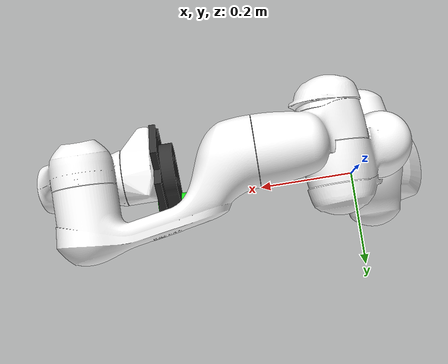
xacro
<?xml version="1.0" encoding="utf-8"?>
<robot xmlns:xacro="http://www.ros.org/wiki/xacro" name="panda">

  <xacro:include filename="panda_arm.urdf"/>

  <xacro:include filename="$(find reorientbot_ros)/robots/drl/suction.xacro"/>
  <xacro:suction_gripper ns="panda" rpy="${pi} 0 ${-pi/4}" xyz="0 0 0.0065" connected_to="panda_link8"/>

</robot>

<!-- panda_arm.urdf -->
<!-- |    This document was autogenerated by xacro from panda_arm_hand.urdf.xacro      | -->
<!-- |    EDITING THIS FILE BY HAND IS NOT RECOMMENDED                                 | -->
<robot name="panda" xmlns:xacro="http://www.ros.org/wiki/xacro">
  <link name="panda_link0">
    <inertial>
      <origin rpy="0 0 0" xyz="0 0 0.05"/>
      <mass value="2.9"/>
      <inertia ixx="0.1" ixy="0" ixz="0" iyy="0.1" iyz="0" izz="0.1"/>
    </inertial>
    <visual>
      <geometry>
        <mesh filename="package://meshes/collision/link0.obj"/>
      </geometry>
      <material name="panda_white">
        <color rgba="1. 1. 1. 1."/>
      </material>
    </visual>
    <collision>
      <geometry>
        <mesh filename="package://meshes/collision/link0.obj"/>
      </geometry>
      <material name="panda_white"/>
    </collision>
  </link>
  <link name="panda_link1">
    <inertial>
      <origin rpy="0 0 0" xyz="0 -0.04 -0.05"/>
      <mass value="2.7"/>
      <inertia ixx="0.1" ixy="0" ixz="0" iyy="0.1" iyz="0" izz="0.1"/>
    </inertial>
    <visual>
      <geometry>
        <mesh filename="package://meshes/visual/link1.obj"/>
      </geometry>
      <material name="panda_white"/>
    </visual>
    <collision>
      <geometry>
        <mesh filename="package://meshes/collision/link1.obj"/>
      </geometry>
      <material name="panda_white"/>
    </collision>
  </link>
  <joint name="panda_joint1" type="revolute">
    <safety_controller k_position="100.0" k_velocity="40.0" soft_lower_limit="-2.8973" soft_upper_limit="2.8973"/>
    <origin rpy="0 0 0" xyz="0 0 0.333"/>
    <parent link="panda_link0"/>
    <child link="panda_link1"/>
    <axis xyz="0 0 1"/>
    <limit effort="87" lower="-2.8973" upper="2.8973" velocity="2.1750"/>
  </joint>
  <link name="panda_link2">
    <inertial>
      <origin rpy="0 0 0" xyz="0 -0.04 0.06"/>
      <mass value="2.73"/>
      <inertia ixx="0.1" ixy="0" ixz="0" iyy="0.1" iyz="0" izz="0.1"/>
    </inertial>
    <visual>
      <geometry>
        <mesh filename="package://meshes/visual/link2.obj"/>
      </geometry>
      <material name="panda_white"/>
    </visual>
    <collision>
      <geometry>
        <mesh filename="package://meshes/collision/link2.obj"/>
      </geometry>
      <material name="panda_white"/>
    </collision>
  </link>
  <joint name="panda_joint2" type="revolute">
    <safety_controller k_position="100.0" k_velocity="40.0" soft_lower_limit="-1.7628" soft_upper_limit="1.7628"/>
    <origin rpy="-1.57079632679 0 0" xyz="0 0 0"/>
    <parent link="panda_link1"/>
    <child link="panda_link2"/>
    <axis xyz="0 0 1"/>
    <limit effort="87" lower="-1.7628" upper="1.7628" velocity="2.1750"/>
  </joint>
  <link name="panda_link3">
    <inertial>
      <origin rpy="0 0 0" xyz="0.01 0.01 -0.05"/>
      <mass value="2.04"/>
      <inertia ixx="0.1" ixy="0" ixz="0" iyy="0.1" iyz="0" izz="0.1"/>
    </inertial>
    <visual>
      <geometry>
        <mesh filename="package://meshes/visual/link3.obj"/>
      </geometry>
      <material name="panda_red">
        <color rgba="1. 1. 1. 1."/>
      </material>
    </visual>
    <collision>
      <geometry>
        <mesh filename="package://meshes/collision/link3.obj"/>
      </geometry>
    </collision>
  </link>
  <joint name="panda_joint3" type="revolute">
    <safety_controller k_position="100.0" k_velocity="40.0" soft_lower_limit="-2.8973" soft_upper_limit="2.8973"/>
    <origin rpy="1.57079632679 0 0" xyz="0 -0.316 0"/>
    <parent link="panda_link2"/>
    <child link="panda_link3"/>
    <axis xyz="0 0 1"/>
    <limit effort="87" lower="-2.8973" upper="2.8973" velocity="2.1750"/>
  </joint>
  <link name="panda_link4">
    <inertial>
      <origin rpy="0 0 0" xyz="-0.03 0.03 0.02"/>
      <mass value="2.08"/>
      <inertia ixx="0.1" ixy="0" ixz="0" iyy="0.1" iyz="0" izz="0.1"/>
    </inertial>
    <visual>
      <geometry>
        <mesh filename="package://meshes/visual/link4.obj"/>
      </geometry>
      <material name="panda_white"/>
    </visual>
    <collision>
      <geometry>
        <mesh filename="package://meshes/collision/link4.obj"/>
      </geometry>
      <material name="panda_white"/>
    </collision>
  </link>
  <joint name="panda_joint4" type="revolute">
    <safety_controller k_position="100.0" k_velocity="40.0" soft_lower_limit="-3.0718" soft_upper_limit="-0.0698"/>
    <origin rpy="1.57079632679 0 0" xyz="0.0825 0 0"/>
    <parent link="panda_link3"/>
    <child link="panda_link4"/>
    <axis xyz="0 0 1"/>
    <limit effort="87" lower="-3.0718" upper="-0.0698" velocity="2.1750"/>
  </joint>
  <link name="panda_link5">
    <inertial>
      <origin rpy="0 0 0" xyz="0 0.04 -0.12"/>
      <mass value="3"/>
      <inertia ixx="0.1" ixy="0" ixz="0" iyy="0.1" iyz="0" izz="0.1"/>
    </inertial>
    <visual>
      <geometry>
        <mesh filename="package://meshes/visual/link5.obj"/>
      </geometry>
      <material name="panda_white"/>
    </visual>
    <collision>
      <geometry>
        <mesh filename="package://meshes/collision/link5.obj"/>
      </geometry>
      <material name="panda_white"/>
    </collision>
  </link>
  <joint name="panda_joint5" type="revolute">
    <safety_controller k_position="100.0" k_velocity="40.0" soft_lower_limit="-2.8973" soft_upper_limit="2.8973"/>
    <origin rpy="-1.57079632679 0 0" xyz="-0.0825 0.384 0"/>
    <parent link="panda_link4"/>
    <child link="panda_link5"/>
    <axis xyz="0 0 1"/>
    <limit effort="12" lower="-2.8973" upper="2.8973" velocity="2.6100"/>
  </joint>
  <link name="panda_link6">
    <inertial>
      <origin rpy="0 0 0" xyz="0.04 0 0"/>
      <mass value="1.3"/>
      <inertia ixx="0.1" ixy="0" ixz="0" iyy="0.1" iyz="0" izz="0.1"/>
    </inertial>
    <visual>
      <geometry>
        <mesh filename="package://meshes/visual/link6.obj"/>
      </geometry>
      <material name="panda_white"/>
    </visual>
    <collision>
      <geometry>
        <mesh filename="package://meshes/collision/link6.obj"/>
      </geometry>
      <material name="panda_white"/>
    </collision>
  </link>
  <joint name="panda_joint6" type="revolute">
    <safety_controller k_position="100.0" k_velocity="40.0" soft_lower_limit="-0.0175" soft_upper_limit="3.7525"/>
    <origin rpy="1.57079632679 0 0" xyz="0 0 0"/>
    <parent link="panda_link5"/>
    <child link="panda_link6"/>
    <axis xyz="0 0 1"/>
    <limit effort="12" lower="-0.0175" upper="3.7525" velocity="2.6100"/>
  </joint>
  <link name="panda_link7">
    <inertial>
      <origin rpy="0 0 0" xyz="0 0 0.08"/>
      <mass value=".2"/>
      <inertia ixx="0.1" ixy="0" ixz="0" iyy="0.1" iyz="0" izz="0.1"/>
    </inertial>
    <visual>
      <geometry>
        <mesh filename="package://meshes/collision/link7.obj"/>
      </geometry>
      <material name="panda_white"/>
    </visual>
    <collision>
      <geometry>
        <mesh filename="package://meshes/collision/link7.obj"/>
      </geometry>
      <material name="panda_white"/>
    </collision>
  </link>
  <joint name="panda_joint7" type="revolute">
    <safety_controller k_position="100.0" k_velocity="40.0" soft_lower_limit="-2.8973" soft_upper_limit="2.8973"/>
    <origin rpy="1.57079632679 0 0" xyz="0.088 0 0"/>
    <parent link="panda_link6"/>
    <child link="panda_link7"/>
    <axis xyz="0 0 1"/>
    <limit effort="12" lower="-2.8973" upper="2.8973" velocity="2.6100"/>
  </joint>
  <link name="panda_link8">
    <inertial>
      <origin rpy="0 0 0" xyz="0 0 0"/>
      <mass value="0.0"/>
      <inertia ixx="0.1" ixy="0" ixz="0" iyy="0.1" iyz="0" izz="0.1"/>
    </inertial>
  </link>
  <joint name="panda_joint8" type="fixed">
    <origin rpy="0 0 0" xyz="0 0 0.107"/>
    <parent link="panda_link7"/>
    <child link="panda_link8"/>
    <axis xyz="0 0 0"/>
  </joint>

</robot>

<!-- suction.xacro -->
<robot xmlns:xacro="http://www.ros.org/wiki/xacro" name="suction_gripper">

  <material name="black">
    <color rgba="0.2 0.2 0.2 1"/>
  </material>

  <material name="green">
    <color rgba="0.1 0.9 0.1 1"/>
  </material>

  <xacro:macro name="suction_gripper" params="connected_to:='' ns:='' rpy:='0 0 0' xyz:='0 0 0' ">

    <xacro:unless value="${connected_to == ''}">
      <joint name="${ns}_suction_gripper_joint" type="fixed">
        <parent link="${connected_to}"/>
        <child link="${ns}_suction_gripper"/>
        <origin xyz="${xyz}" rpy="${rpy}"/>
      </joint>
    </xacro:unless>

    <link name="${ns}_suction_gripper">
      <visual>
        <geometry>
          <mesh filename="package://reorientbot_ros/robots/drl/meshes/visual/suction_mount.obj"/>
        </geometry>
        <material name="black"/>
      </visual>
      <collision>
        <geometry>
          <mesh filename="package://reorientbot_ros/robots/drl/meshes/collision/suction_mount.obj"/>
        </geometry>
      </collision>
    </link>

    <link name="tipLink">
      <visual>
        <geometry>
          <cylinder length="0.10" radius="0.018"/>
        </geometry>
        <origin xyz="0 0 -0.05"/>
        <material name="green"/>
      </visual>
      <collision>
        <geometry>
          <cylinder length="0.16" radius="0.018"/>
        </geometry>
        <origin xyz="0 0 -0.08"/>
      </collision>
    </link>

    <joint name="${ns}_suction_mount_to_cup_joint" type="fixed">
      <parent link="${ns}_suction_gripper"/>
      <child link="tipLink"/>
      <origin xyz="0.072 0 -0.08" rpy="${pi} 0 0"/>
    </joint>

  </xacro:macro>
</robot>
